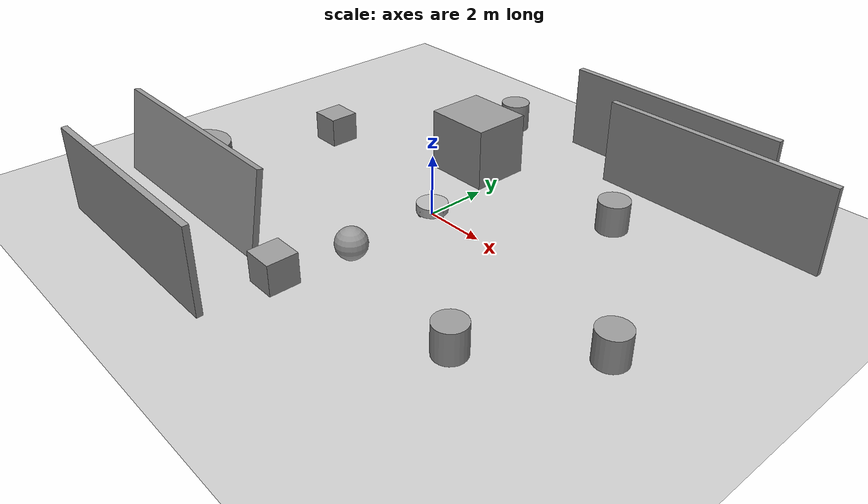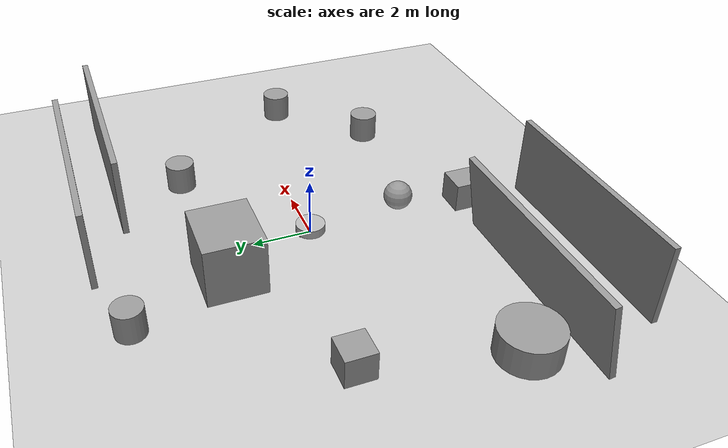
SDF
<sdf version="1.6">
 <world name="default">
  <light name="sun" type="directional">
   <pose>0 0 10 0 -0 0</pose>
   <diffuse>0.8 0.8 0.8 1</diffuse>
   <specular>0.2 0.2 0.2 1</specular>
   <attenuation>
    <range>1000</range>
    <constant>0.9</constant>
    <linear>0.01</linear>
    <quadratic>0.001</quadratic>
   </attenuation>
   <direction>-0.5 0.1 -0.9</direction>
  </light>
  <model name="ground_plane">
   <static>1</static>
   <link name="link">
    <collision name="collision">
     <geometry><plane><normal>0 0 1</normal><size>100 100</size></plane></geometry>
     <surface><friction><ode><mu>100</mu><mu2>50</mu2></ode></friction></surface>
    </collision>
    <visual name="visual">
     <cast_shadows>0</cast_shadows>
     <geometry><plane><normal>0 0 1</normal><size>100 100</size></plane></geometry>
     <material>
      <script><uri>file://media/materials/scripts/gazebo.material</uri><name>Gazebo/Grey</name></script>
     </material>
    </visual>
   </link>
  </model>
  <gravity>0 0 -9.8</gravity>
  <magnetic_field>6e-06 2.3e-05 -4.2e-05</magnetic_field>
  <atmosphere type="adiabatic"/>
  <physics name="default_physics" default="0" type="ode">
   <max_step_size>0.001</max_step_size>
   <real_time_factor>1</real_time_factor>
   <real_time_update_rate>1000</real_time_update_rate>
  </physics>
  <scene><ambient>0.4 0.4 0.4 1</ambient><background>0.7 0.7 0.7 1</background><shadows>1</shadows></scene>
  <spherical_coordinates>
   <surface_model>EARTH_WGS84</surface_model>
   <latitude_deg>0</latitude_deg>
   <longitude_deg>0</longitude_deg>
   <elevation>0</elevation>
   <heading_deg>0</heading_deg>
  </spherical_coordinates>
  <model name="grey_wall">
   <static>1</static>
   <link name="link">
    <pose>0 0 1.4 0 -0 0</pose>
    <collision name="collision"><geometry><box><size>7.5 0.2 2.8</size></box></geometry></collision>
    <visual name="visual">
     <cast_shadows>0</cast_shadows>
     <geometry><box><size>7.5 0.2 2.8</size></box></geometry>
     <material>
      <script>
       <uri>model://grey_wall/materials/scripts</uri>
       <uri>model://grey_wall/materials/textures</uri>
       <name>vrc/grey_wall</name>
      </script>
     </material>
    </visual>
   </link>
   <pose>3.39843 7.20345 0 0 -0 0</pose>
  </model>
  <model name="round_robot">
   <link name="base_link">
    <inertial>
     <mass>15.8</mass>
     <inertia>
      <ixx>1.90013</ixx>
      <ixy>6.93889e-18</ixy>
      <ixz>0</ixz>
      <iyy>1.90013</iyy>
      <iyz>0</iyz>
      <izz>2.00025</izz>
     </inertia>
    </inertial>
    <collision name="base_link_fixed_joint_lump__collision_collision">
     <geometry><cylinder><length>0.3</length><radius>0.5</radius></cylinder></geometry>
    </collision>
    <collision name="base_link_fixed_joint_lump__caster_collision_collision_1">
     <pose>0.45 0 -0.2 0 -0 0</pose>
     <geometry><sphere><radius>0.05</radius></sphere></geometry>
    </collision>
    <collision name="base_link_fixed_joint_lump__sensor_1_collision_2">
     <pose>0.5 0 0 0 -0 0</pose>
     <geometry><box><size>0.01 0.01 0.01</size></box></geometry>
    </collision>
    <collision name="base_link_fixed_joint_lump__sensor_2_collision_3">
     <pose>0.354 0.354 0 0 -0 0.7855</pose>
     <geometry><box><size>0.01 0.01 0.01</size></box></geometry>
    </collision>
    <collision name="base_link_fixed_joint_lump__sensor_3_collision_4">
     <pose>0 0.5 0 0 -0 1.571</pose>
     <geometry><box><size>0.01 0.01 0.01</size></box></geometry>
    </collision>
    <collision name="base_link_fixed_joint_lump__sensor_4_collision_5">
     <pose>-0.354 0.354 0 0 -0 2.3565</pose>
     <geometry><box><size>0.01 0.01 0.01</size></box></geometry>
    </collision>
    <collision name="base_link_fixed_joint_lump__sensor_5_collision_6">
     <pose>-0.5 0 0 0 -0 -3.14119</pose>
     <geometry><box><size>0.01 0.01 0.01</size></box></geometry>
    </collision>
    <collision name="base_link_fixed_joint_lump__sensor_6_collision_7">
     <pose>-0.354 -0.354 0 0 -0 -2.35569</pose>
     <geometry><box><size>0.01 0.01 0.01</size></box></geometry>
    </collision>
    <collision name="base_link_fixed_joint_lump__sensor_7_collision_8">
     <pose>0 -0.5 0 0 -0 -1.57019</pose>
     <geometry><box><size>0.01 0.01 0.01</size></box></geometry>
    </collision>
    <collision name="base_link_fixed_joint_lump__sensor_8_collision_9">
     <pose>0.354 -0.354 0 0 -0 -0.784185</pose>
     <geometry><box><size>0.01 0.01 0.01</size></box></geometry>
    </collision>
    <visual name="base_link_fixed_joint_lump__visual_visual">
     <geometry><cylinder><length>0.3</length><radius>0.5</radius></cylinder></geometry>
    </visual>
    <visual name="base_link_fixed_joint_lump__caster_visual_visual_1">
     <pose>0.45 0 -0.2 0 -0 0</pose>
     <geometry><sphere><radius>0.05</radius></sphere></geometry>
    </visual>
    <visual name="base_link_fixed_joint_lump__sensor_1_visual_2">
     <pose>0.5 0 0 0 -0 0</pose>
     <geometry><box><size>0.01 0.01 0.01</size></box></geometry>
     <material><script><uri>__default__</uri><name>__default__</name></script></material>
    </visual>
    <visual name="base_link_fixed_joint_lump__sensor_2_visual_3">
     <pose>0.354 0.354 0 0 -0 0.7855</pose>
     <geometry><box><size>0.01 0.01 0.01</size></box></geometry>
     <material><script><uri>__default__</uri><name>__default__</name></script></material>
    </visual>
    <visual name="base_link_fixed_joint_lump__sensor_3_visual_4">
     <pose>0 0.5 0 0 -0 1.571</pose>
     <geometry><box><size>0.01 0.01 0.01</size></box></geometry>
     <material><script><uri>__default__</uri><name>__default__</name></script></material>
    </visual>
    <visual name="base_link_fixed_joint_lump__sensor_4_visual_5">
     <pose>-0.354 0.354 0 0 -0 2.3565</pose>
     <geometry><box><size>0.01 0.01 0.01</size></box></geometry>
     <material><script><uri>__default__</uri><name>__default__</name></script></material>
    </visual>
    <visual name="base_link_fixed_joint_lump__sensor_5_visual_6">
     <pose>-0.5 0 0 0 -0 -3.14119</pose>
     <geometry><box><size>0.01 0.01 0.01</size></box></geometry>
     <material><script><uri>__default__</uri><name>__default__</name></script></material>
    </visual>
    <visual name="base_link_fixed_joint_lump__sensor_6_visual_7">
     <pose>-0.354 -0.354 0 0 -0 -2.35569</pose>
     <geometry><box><size>0.01 0.01 0.01</size></box></geometry>
     <material><script><uri>__default__</uri><name>__default__</name></script></material>
    </visual>
    <visual name="base_link_fixed_joint_lump__sensor_7_visual_8">
     <pose>0 -0.5 0 0 -0 -1.57019</pose>
     <geometry><box><size>0.01 0.01 0.01</size></box></geometry>
     <material><script><uri>__default__</uri><name>__default__</name></script></material>
    </visual>
    <visual name="base_link_fixed_joint_lump__sensor_8_visual_9">
     <pose>0.354 -0.354 0 0 -0 -0.784185</pose>
     <geometry><box><size>0.01 0.01 0.01</size></box></geometry>
     <material><script><uri>__default__</uri><name>__default__</name></script></material>
    </visual>
    <sensor name="ir_1" type="ray">
     <visualize>1</visualize>
     <update_rate>50</update_rate>
     <ray>
      <scan>
       <horizontal>
        <samples>10</samples>
        <resolution>1</resolution>
        <min_angle>-0.05</min_angle>
        <max_angle>0.05</max_angle>
       </horizontal>
       <vertical>
        <samples>10</samples>
        <resolution>1</resolution>
        <min_angle>-0</min_angle>
        <max_angle>0</max_angle>
       </vertical>
      </scan>
      <range><min>0.01</min><max>2</max><resolution>0.02</resolution></range>
     </ray>
     <plugin name="gazebo_ros_range" filename="libgazebo_ros_range.so">
      <gaussianNoise>0.005</gaussianNoise>
      <alwaysOn>true</alwaysOn>
      <updateRate>50</updateRate>
      <topicName>sensor/ir_1</topicName>
      <frameName>base_ir_front</frameName>
      <radiation>INFRARED</radiation>
      <fov>0.2967</fov>
      <robotNamespace>/</robotNamespace>
     </plugin>
     <pose>0.5 0 0 0 -0 0</pose>
    </sensor>
    <sensor name="ir_2" type="ray">
     <visualize>1</visualize>
     <update_rate>50</update_rate>
     <ray>
      <scan>
       <horizontal>
        <samples>10</samples>
        <resolution>1</resolution>
        <min_angle>-0.05</min_angle>
        <max_angle>0.05</max_angle>
       </horizontal>
       <vertical>
        <samples>10</samples>
        <resolution>1</resolution>
        <min_angle>-0.1</min_angle>
        <max_angle>0.1</max_angle>
       </vertical>
      </scan>
      <range><min>0.01</min><max>2</max><resolution>0.02</resolution></range>
     </ray>
     <plugin name="gazebo_ros_range" filename="libgazebo_ros_range.so">
      <gaussianNoise>0.005</gaussianNoise>
      <alwaysOn>true</alwaysOn>
      <updateRate>50</updateRate>
      <topicName>sensor/ir_2</topicName>
      <frameName>base_ir_front</frameName>
      <radiation>INFRARED</radiation>
      <fov>0.2967</fov>
      <robotNamespace>/</robotNamespace>
     </plugin>
     <pose>0.354 0.354 0 0 -0 0.7855</pose>
    </sensor>
    <sensor name="ir_3" type="ray">
     <visualize>1</visualize>
     <update_rate>50</update_rate>
     <ray>
      <scan>
       <horizontal>
        <samples>10</samples>
        <resolution>1</resolution>
        <min_angle>-0.05</min_angle>
        <max_angle>0.05</max_angle>
       </horizontal>
       <vertical>
        <samples>10</samples>
        <resolution>1</resolution>
        <min_angle>-0</min_angle>
        <max_angle>0</max_angle>
       </vertical>
      </scan>
      <range><min>0.01</min><max>2</max><resolution>0.02</resolution></range>
     </ray>
     <plugin name="gazebo_ros_range" filename="libgazebo_ros_range.so">
      <gaussianNoise>0.005</gaussianNoise>
      <alwaysOn>true</alwaysOn>
      <updateRate>50</updateRate>
      <topicName>sensor/ir_3</topicName>
      <frameName>base_ir_front</frameName>
      <radiation>INFRARED</radiation>
      <fov>0.2967</fov>
      <robotNamespace>/</robotNamespace>
     </plugin>
     <pose>0 0.5 0 0 -0 1.571</pose>
    </sensor>
    <sensor name="ir_4" type="ray">
     <visualize>1</visualize>
     <update_rate>50</update_rate>
     <ray>
      <scan>
       <horizontal>
        <samples>10</samples>
        <resolution>1</resolution>
        <min_angle>-0.05</min_angle>
        <max_angle>0.05</max_angle>
       </horizontal>
       <vertical>
        <samples>10</samples>
        <resolution>1</resolution>
        <min_angle>-0</min_angle>
        <max_angle>0</max_angle>
       </vertical>
      </scan>
      <range><min>0.01</min><max>2</max><resolution>0.02</resolution></range>
     </ray>
     <plugin name="gazebo_ros_range" filename="libgazebo_ros_range.so">
      <gaussianNoise>0.005</gaussianNoise>
      <alwaysOn>true</alwaysOn>
      <updateRate>50</updateRate>
      <topicName>sensor/ir_4</topicName>
      <frameName>base_ir_front</frameName>
      <radiation>INFRARED</radiation>
      <fov>0.2967</fov>
      <robotNamespace>/</robotNamespace>
     </plugin>
     <pose>-0.354 0.354 0 0 -0 2.3565</pose>
    </sensor>
    <sensor name="ir_5" type="ray">
     <visualize>1</visualize>
     <update_rate>50</update_rate>
     <ray>
      <scan>
       <horizontal>
        <samples>10</samples>
        <resolution>1</resolution>
        <min_angle>-0.05</min_angle>
        <max_angle>0.05</max_angle>
       </horizontal>
       <vertical>
        <samples>10</samples>
        <resolution>1</resolution>
        <min_angle>-0</min_angle>
        <max_angle>0</max_angle>
       </vertical>
      </scan>
      <range><min>0.01</min><max>2</max><resolution>0.02</resolution></range>
     </ray>
     <plugin name="gazebo_ros_range" filename="libgazebo_ros_range.so">
      <gaussianNoise>0.005</gaussianNoise>
      <alwaysOn>true</alwaysOn>
      <updateRate>50</updateRate>
      <topicName>sensor/ir_5</topicName>
      <frameName>base_ir_front</frameName>
      <radiation>INFRARED</radiation>
      <fov>0.2967</fov>
      <robotNamespace>/</robotNamespace>
     </plugin>
     <pose>-0.5 0 0 0 -0 -3.14119</pose>
    </sensor>
    <sensor name="ir_6" type="ray">
     <visualize>1</visualize>
     <update_rate>50</update_rate>
     <ray>
      <scan>
       <horizontal>
        <samples>10</samples>
        <resolution>1</resolution>
        <min_angle>-0.05</min_angle>
        <max_angle>0.05</max_angle>
       </horizontal>
       <vertical>
        <samples>10</samples>
        <resolution>1</resolution>
        <min_angle>-0</min_angle>
        <max_angle>0</max_angle>
       </vertical>
      </scan>
      <range><min>0.01</min><max>2</max><resolution>0.02</resolution></range>
     </ray>
     <plugin name="gazebo_ros_range" filename="libgazebo_ros_range.so">
      <gaussianNoise>0.005</gaussianNoise>
      <alwaysOn>true</alwaysOn>
      <updateRate>50</updateRate>
      <topicName>sensor/ir_6</topicName>
      <frameName>base_ir_front</frameName>
      <radiation>INFRARED</radiation>
      <fov>0.2967</fov>
      <robotNamespace>/</robotNamespace>
     </plugin>
     <pose>-0.354 -0.354 0 0 -0 -2.35569</pose>
    </sensor>
    <sensor name="ir_7" type="ray">
     <visualize>1</visualize>
     <update_rate>50</update_rate>
     <ray>
      <scan>
       <horizontal>
        <samples>10</samples>
        <resolution>1</resolution>
        <min_angle>-0.05</min_angle>
        <max_angle>0.05</max_angle>
       </horizontal>
       <vertical>
        <samples>10</samples>
        <resolution>1</resolution>
        <min_angle>-0</min_angle>
        <max_angle>0</max_angle>
       </vertical>
      </scan>
      <range><min>0.01</min><max>2</max><resolution>0.02</resolution></range>
     </ray>
     <plugin name="gazebo_ros_range" filename="libgazebo_ros_range.so">
      <gaussianNoise>0.005</gaussianNoise>
      <alwaysOn>true</alwaysOn>
      <updateRate>50</updateRate>
      <topicName>sensor/ir_7</topicName>
      <frameName>base_ir_front</frameName>
      <radiation>INFRARED</radiation>
      <fov>0.2967</fov>
      <robotNamespace>/</robotNamespace>
     </plugin>
     <pose>0 -0.5 0 0 -0 -1.57019</pose>
    </sensor>
    <sensor name="ir_8" type="ray">
     <visualize>1</visualize>
     <update_rate>50</update_rate>
     <ray>
      <scan>
       <horizontal>
        <samples>10</samples>
        <resolution>1</resolution>
        <min_angle>-0.05</min_angle>
        <max_angle>0.05</max_angle>
       </horizontal>
       <vertical>
        <samples>10</samples>
        <resolution>1</resolution>
        <min_angle>-0</min_angle>
        <max_angle>0</max_angle>
       </vertical>
      </scan>
      <range><min>0.01</min><max>2</max><resolution>0.02</resolution></range>
     </ray>
     <plugin name="gazebo_ros_range" filename="libgazebo_ros_range.so">
      <gaussianNoise>0.005</gaussianNoise>
      <alwaysOn>true</alwaysOn>
      <updateRate>50</updateRate>
      <topicName>sensor/ir_8</topicName>
      <frameName>base_ir_front</frameName>
      <radiation>INFRARED</radiation>
      <fov>0.2967</fov>
      <robotNamespace>/</robotNamespace>
     </plugin>
     <pose>0.354 -0.354 0 0 -0 -0.784185</pose>
    </sensor>
   </link>
   <link name="left_wheel">
    <pose>-0.1 0.405 -0.15 0 -0 0</pose>
    <inertial>
     <mass>0.5</mass>
     <inertia><ixx>0.5</ixx><ixy>0</ixy><ixz>0</ixz><iyy>0.5</iyy><iyz>0</iyz><izz>0.5</izz></inertia>
    </inertial>
    <collision name="left_wheel_collision">
     <pose>0 0 0 3.14159 1.57079 -1.57089</pose>
     <geometry><cylinder><length>0.05</length><radius>0.1</radius></cylinder></geometry>
    </collision>
    <visual name="left_wheel_visual">
     <pose>0 0 0 3.14159 1.57079 -1.57089</pose>
     <geometry><cylinder><length>0.05</length><radius>0.1</radius></cylinder></geometry>
    </visual>
   </link>
   <joint name="left_wheel_hinge" type="revolute">
    <child>left_wheel</child>
    <parent>base_link</parent>
    <axis>
     <xyz>0 1 0</xyz>
     <limit><lower>-1e+16</lower><upper>1e+16</upper></limit>
     <dynamics><spring_reference>0</spring_reference><spring_stiffness>0</spring_stiffness></dynamics>
     <use_parent_model_frame>1</use_parent_model_frame>
    </axis>
   </joint>
   <link name="right_wheel">
    <pose>-0.1 -0.405 -0.15 0 -0 0</pose>
    <inertial>
     <mass>0.5</mass>
     <inertia><ixx>0.5</ixx><ixy>0</ixy><ixz>0</ixz><iyy>0.5</iyy><iyz>0</iyz><izz>0.5</izz></inertia>
    </inertial>
    <collision name="right_wheel_collision">
     <pose>0 0 0 3.14159 1.57079 -1.57089</pose>
     <geometry><cylinder><length>0.05</length><radius>0.1</radius></cylinder></geometry>
    </collision>
    <visual name="right_wheel_visual">
     <pose>0 0 0 3.14159 1.57079 -1.57089</pose>
     <geometry><cylinder><length>0.05</length><radius>0.1</radius></cylinder></geometry>
    </visual>
   </link>
   <joint name="right_wheel_hinge" type="revolute">
    <child>right_wheel</child>
    <parent>base_link</parent>
    <axis>
     <xyz>0 1 0</xyz>
     <limit><lower>-1e+16</lower><upper>1e+16</upper></limit>
     <dynamics><spring_reference>0</spring_reference><spring_stiffness>0</spring_stiffness></dynamics>
     <use_parent_model_frame>1</use_parent_model_frame>
    </axis>
   </joint>
   <static>0</static>
   <plugin name="differential_drive_controller" filename="libgazebo_ros_diff_drive.so">
    <alwaysOn>true</alwaysOn>
    <updateRate>50</updateRate>
    <leftJoint>left_wheel_hinge</leftJoint>
    <rightJoint>right_wheel_hinge</rightJoint>
    <wheelSeparation>0.81</wheelSeparation>
    <wheelDiameter>0.2</wheelDiameter>
    <torque>5</torque>
    <commandTopic>cmd_vel</commandTopic>
    <odometryTopic>odom</odometryTopic>
    <odometryFrame>odom</odometryFrame>
    <robotBaseFrame>base_link</robotBaseFrame>
    <robotNamespace>/</robotNamespace>
   </plugin>
   <pose>-0.017833 0.003653 0.25 -0 -1e-05 0.017831</pose>
  </model>
  <model name="unit_box_0">
   <pose>-0.155858 -5.67061 0.5 0 -0 0</pose>
   <link name="link">
    <inertial>
     <mass>1</mass>
     <inertia>
      <ixx>0.166667</ixx>
      <ixy>0</ixy>
      <ixz>0</ixz>
      <iyy>0.166667</iyy>
      <iyz>0</iyz>
      <izz>0.166667</izz>
     </inertia>
    </inertial>
    <collision name="collision"><geometry><box><size>1 1 1</size></box></geometry></collision>
    <visual name="visual">
     <geometry><box><size>1 1 1</size></box></geometry>
     <material>
      <script><name>Gazebo/Grey</name><uri>file://media/materials/scripts/gazebo.material</uri></script>
     </material>
    </visual>
   </link>
  </model>
  <model name="grey_wall_0">
   <static>1</static>
   <link name="link">
    <pose>0 0 1.4 0 -0 0</pose>
    <collision name="collision"><geometry><box><size>7.5 0.2 2.8</size></box></geometry></collision>
    <visual name="visual">
     <cast_shadows>0</cast_shadows>
     <geometry><box><size>7.5 0.2 2.8</size></box></geometry>
     <material>
      <script>
       <uri>model://grey_wall/materials/scripts</uri>
       <uri>model://grey_wall/materials/textures</uri>
       <name>vrc/grey_wall</name>
      </script>
     </material>
    </visual>
   </link>
   <pose>-3.89117 -8.00031 0 0 -0 0</pose>
  </model>
  <model name="grey_wall_1">
   <static>1</static>
   <link name="link">
    <pose>0 0 1.4 0 -0 0</pose>
    <collision name="collision"><geometry><box><size>7.5 0.2 2.8</size></box></geometry></collision>
    <visual name="visual">
     <cast_shadows>0</cast_shadows>
     <geometry><box><size>7.5 0.2 2.8</size></box></geometry>
     <material>
      <script>
       <uri>model://grey_wall/materials/scripts</uri>
       <uri>model://grey_wall/materials/textures</uri>
       <name>vrc/grey_wall</name>
      </script>
     </material>
    </visual>
   </link>
   <pose>-5.2434 -5.50625 0 -0.17379 0 0</pose>
  </model>
  <model name="unit_box_1">
   <pose>-6.27765 0.972273 0.5 0 -0 0</pose>
   <link name="link">
    <inertial>
     <mass>1</mass>
     <inertia>
      <ixx>0.166667</ixx>
      <ixy>0</ixy>
      <ixz>0</ixz>
      <iyy>0.166667</iyy>
      <iyz>0</iyz>
      <izz>0.166667</izz>
     </inertia>
    </inertial>
    <collision name="collision"><geometry><box><size>1 1 1</size></box></geometry></collision>
    <visual name="visual">
     <geometry><box><size>1 1 1</size></box></geometry>
     <material>
      <script><name>Gazebo/Grey</name><uri>file://media/materials/scripts/gazebo.material</uri></script>
     </material>
    </visual>
   </link>
  </model>
  <model name="unit_cylinder_0">
   <pose>-2.64281 6.46943 0.5 0 -0 0</pose>
   <link name="link">
    <inertial>
     <mass>1</mass>
     <inertia><ixx>0.145833</ixx><ixy>0</ixy><ixz>0</ixz><iyy>0.145833</iyy><iyz>0</iyz><izz>0.125</izz></inertia>
    </inertial>
    <collision name="collision">
     <geometry><cylinder><radius>0.5</radius><length>1</length></cylinder></geometry>
    </collision>
    <visual name="visual">
     <geometry><cylinder><radius>0.5</radius><length>1</length></cylinder></geometry>
     <material>
      <script><name>Gazebo/Grey</name><uri>file://media/materials/scripts/gazebo.material</uri></script>
     </material>
    </visual>
   </link>
  </model>
  <model name="unit_cylinder_1">
   <pose>-7.36364 -3.84777 0.5 0 -0 0</pose>
   <link name="link">
    <inertial>
     <mass>1</mass>
     <inertia><ixx>0.145833</ixx><ixy>0</ixy><ixz>0</ixz><iyy>0.145833</iyy><iyz>0</iyz><izz>0.125</izz></inertia>
    </inertial>
    <collision name="collision">
     <geometry><cylinder><radius>1.01533</radius><length>1</length></cylinder></geometry>
    </collision>
    <visual name="visual">
     <geometry><cylinder><radius>1.01533</radius><length>1</length></cylinder></geometry>
     <material>
      <script><name>Gazebo/Grey</name><uri>file://media/materials/scripts/gazebo.material</uri></script>
     </material>
    </visual>
   </link>
  </model>
  <model name="grey_wall_2">
   <static>1</static>
   <link name="link">
    <pose>0 0 1.4 0 -0 0</pose>
    <collision name="collision"><geometry><box><size>7.5 0.2 2.8</size></box></geometry></collision>
    <visual name="visual">
     <cast_shadows>0</cast_shadows>
     <geometry><box><size>7.5 0.2 2.8</size></box></geometry>
     <material>
      <script>
       <uri>model://grey_wall/materials/scripts</uri>
       <uri>model://grey_wall/materials/textures</uri>
       <name>vrc/grey_wall</name>
      </script>
     </material>
    </visual>
   </link>
   <pose>5.86818 5.83515 0 0 -0 0</pose>
  </model>
  <model name="unit_box_2">
   <pose>-1.25578 3.15272 0.5 0 -0 0</pose>
   <link name="link">
    <inertial>
     <mass>1</mass>
     <inertia>
      <ixx>0.166667</ixx>
      <ixy>0</ixy>
      <ixz>0</ixz>
      <iyy>0.166667</iyy>
      <iyz>0</iyz>
      <izz>0.166667</izz>
     </inertia>
    </inertial>
    <collision name="collision"><geometry><box><size>2.23716 1.97595 3.07292</size></box></geometry></collision>
    <visual name="visual">
     <geometry><box><size>2.23716 1.97595 3.07292</size></box></geometry>
     <material>
      <script><name>Gazebo/Grey</name><uri>file://media/materials/scripts/gazebo.material</uri></script>
     </material>
    </visual>
   </link>
  </model>
  <model name="unit_sphere_0">
   <pose>0.302966 -3.36815 0.5 0 -0 0</pose>
   <link name="link">
    <inertial>
     <mass>1</mass>
     <inertia><ixx>0.1</ixx><ixy>0</ixy><ixz>0</ixz><iyy>0.1</iyy><iyz>0</iyz><izz>0.1</izz></inertia>
    </inertial>
    <collision name="collision"><geometry><sphere><radius>0.5</radius></sphere></geometry></collision>
    <visual name="visual">
     <geometry><sphere><radius>0.5</radius></sphere></geometry>
     <material>
      <script><name>Gazebo/Grey</name><uri>file://media/materials/scripts/gazebo.material</uri></script>
     </material>
    </visual>
   </link>
  </model>
  <model name="unit_cylinder_2">
   <pose>4.24529 3.46554 0.5 0 -0 0</pose>
   <link name="link">
    <inertial>
     <mass>1</mass>
     <inertia><ixx>0.145833</ixx><ixy>0</ixy><ixz>0</ixz><iyy>0.145833</iyy><iyz>0</iyz><izz>0.125</izz></inertia>
    </inertial>
    <collision name="collision">
     <geometry><cylinder><radius>0.5</radius><length>1</length></cylinder></geometry>
    </collision>
    <visual name="visual">
     <geometry><cylinder><radius>0.5</radius><length>1</length></cylinder></geometry>
     <material>
      <script><name>Gazebo/Grey</name><uri>file://media/materials/scripts/gazebo.material</uri></script>
     </material>
    </visual>
   </link>
  </model>
  <model name="unit_cylinder_3">
   <pose>5.24497 -4.12348 0.5 0 -0 0</pose>
   <link name="link">
    <inertial>
     <mass>1</mass>
     <inertia><ixx>0.145833</ixx><ixy>0</ixy><ixz>0</ixz><iyy>0.145833</iyy><iyz>0</iyz><izz>0.125</izz></inertia>
    </inertial>
    <collision name="collision">
     <geometry><cylinder><radius>0.5</radius><length>1</length></cylinder></geometry>
    </collision>
    <visual name="visual">
     <geometry><cylinder><radius>0.5</radius><length>1</length></cylinder></geometry>
     <material>
      <script><name>Gazebo/Grey</name><uri>file://media/materials/scripts/gazebo.material</uri></script>
     </material>
    </visual>
   </link>
  </model>
  <model name="unit_cylinder_4">
   <pose>8.04085 -1.38328 0.5 0 -0 0</pose>
   <link name="link">
    <inertial>
     <mass>1</mass>
     <inertia><ixx>0.145833</ixx><ixy>0</ixy><ixz>0</ixz><iyy>0.145833</iyy><iyz>0</iyz><izz>0.125</izz></inertia>
    </inertial>
    <collision name="collision">
     <geometry><cylinder><radius>0.5</radius><length>1</length></cylinder></geometry>
    </collision>
    <visual name="visual">
     <geometry><cylinder><radius>0.5</radius><length>1</length></cylinder></geometry>
     <material>
      <script><name>Gazebo/Grey</name><uri>file://media/materials/scripts/gazebo.material</uri></script>
     </material>
    </visual>
   </link>
  </model>
 </world>
</sdf>
